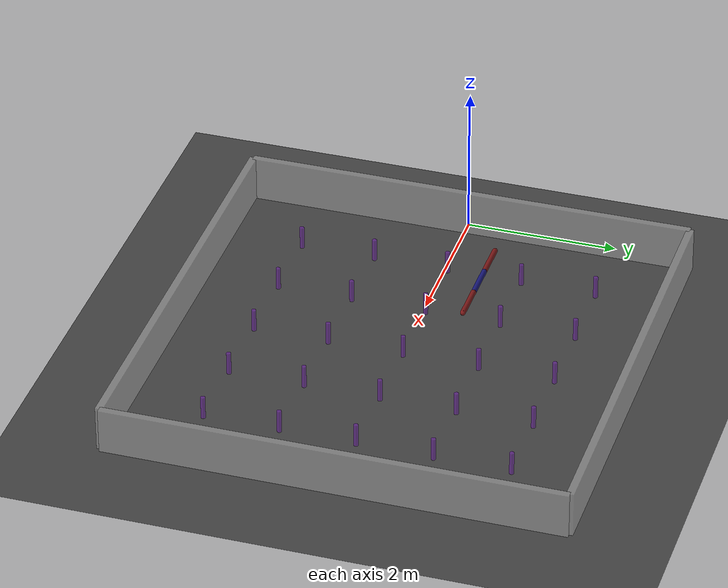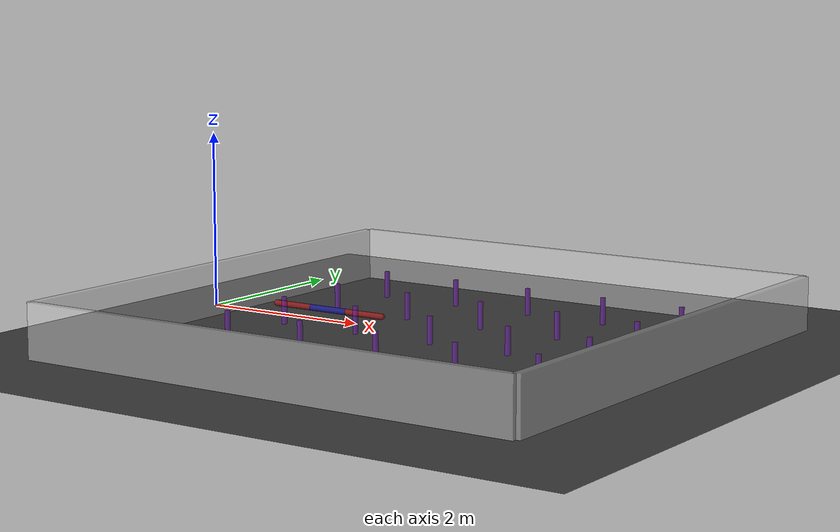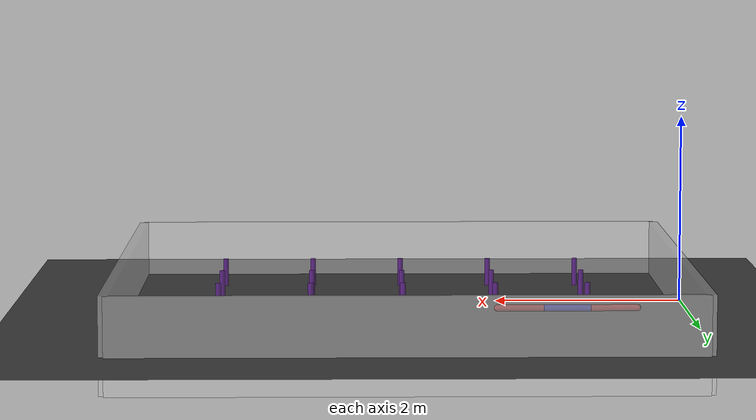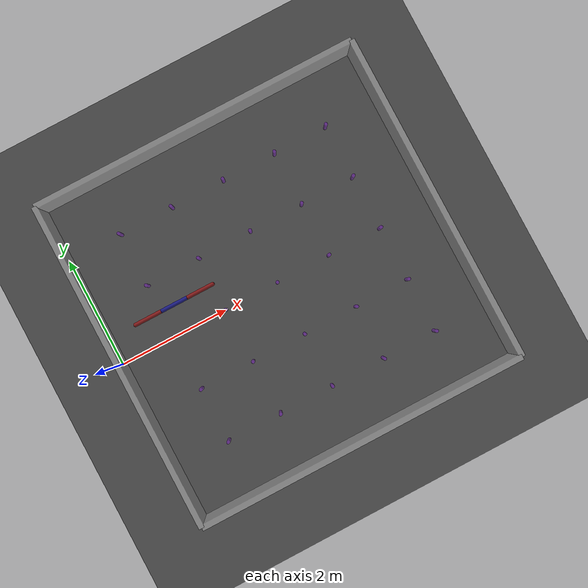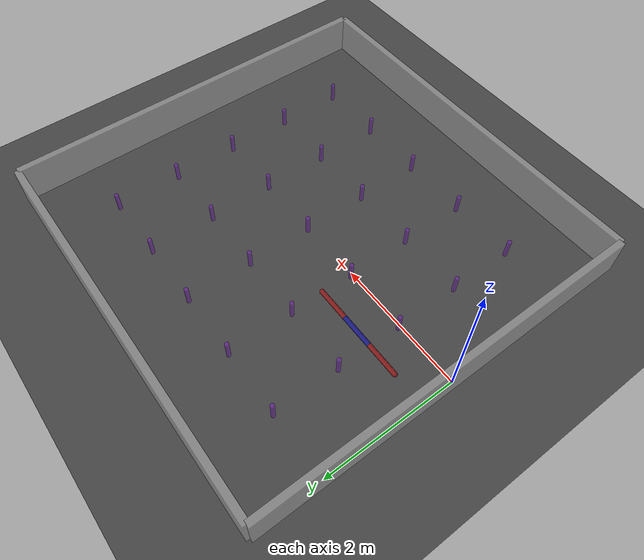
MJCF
<mujoco model="simplified-snake">

    <option timestep="0.005" iterations="50" solver="Newton" tolerance="1e-10"/>

    <!--size njmax="50" nconmax="10" nstack="200"/-->

    <visual>
        <rgba haze=".3 .3 .3 1"/>
    </visual>

    <default>
        <!--joint type="hinge" pos="0 0 0" axis="0 0 1" limited="true" range="0 120" damping="0.1"/-->
        <muscle ctrllimited="true" ctrlrange="-1 1"/>
    </default>

    <asset>
        <texture type="skybox" builtin="gradient" rgb1="0.6 0.6 0.6" rgb2="0 0 0" width="512" height="512"/>

        <texture name="texplane" type="2d" builtin="checker" rgb1=".25 .25 .25" rgb2=".3 .3 .3" width="512" height="512" mark="cross" markrgb=".8 .8 .8"/>

        <material name="matplane" reflectance="0.3" texture="texplane" texrepeat="1 1" texuniform="true"/>
    </asset>

    <option gravity="0 0 -9.8" />

    <worldbody>
        <light directional="true" diffuse=".8 .8 .8" specular=".2 .2 .2" pos="0 0 5" dir="0 0 -1"/>
        <geom name="floor" pos="0 0 -0.1" size="0 0 1" type="plane" material="matplane"/>
        <body name="snake" pos="0.5 0.5 0">
            <joint type="free"/>
            <geom name="body3" type="capsule" size="0.035" mass="3" fromto="0 0 0  0.5 0 0" rgba=".5 .1 .1 1"/>
            <body pos="0.5 0 0">
                <geom name="body2" type="capsule" size="0.035" mass="3" fromto="0 0 0  0.5 0 0" rgba=".1 .1 .5 1"/>
                <joint name="joint2" type="hinge" pos="0 0 0" limited="true" range="-45 45" damping="0.1"/>
                <body pos="0.5 0 0">
                    <geom name="body1" type="capsule" size="0.035" mass="3" fromto="0 0 0  0.5 0 0" rgba=".5 .1 .1 1"/>
                    <joint name="joint1" type="hinge" pos="0 0 0" limited="true" range="-45 45" damping="0.1"/>
                </body>
            </body>
        </body>

        <body pos="0 0 0">
            <geom name="wall1" type="box" pos="0 0 0" size=".05 3 0.5" rgba=".8 .8 .8 .5" mass="1" group="1"/>
            <geom name="wall2" type="box" pos="6 0 0" size=".05 3 0.5" rgba=".8 .8 .8 .5" mass="1" group="1"/>
            <geom name="wall3" type="box" pos="3 -3 0" size="3 0.05 0.5" rgba=".8 .8 .8 .5" mass="1" group="1"/>
            <geom name="wall4" type="box" pos="3 3 0" size="3 0.05 0.5" rgba=".8 .8 .8 .5" mass="1" group="1"/>

            <geom name="obstacle1.1" type="cylinder" pos="1 -2 0" size=".03 .2" rgba=".5 .1 .8 .5" mass="0" group="1"/>
            <geom name="obstacle1.2" type="cylinder" pos="1 -1 0" size=".03 .2" rgba=".5 .1 .8 .5" mass="0" group="1"/>
            <geom name="obstacle1.3" type="cylinder" pos="1 0 0" size=".03 .2" rgba=".5 .1 .8 .5" mass="0" group="1"/>
            <geom name="obstacle1.4" type="cylinder" pos="1 1 0" size=".03 .2" rgba=".5 .1 .8 .5" mass="0" group="1"/>
            <geom name="obstacle1.5" type="cylinder" pos="1 2 0" size=".03 .2" rgba=".5 .1 .8 .5" mass="0" group="1"/>
            <geom name="obstacle2.1" type="cylinder" pos="2 -2 0" size=".03 .2" rgba=".5 .1 .8 .5" mass="0" group="1"/>
            <geom name="obstacle2.2" type="cylinder" pos="2 -1 0" size=".03 .2" rgba=".5 .1 .8 .5" mass="0" group="1"/>
            <geom name="obstacle2.3" type="cylinder" pos="2 0 0" size=".03 .2" rgba=".5 .1 .8 .5" mass="0" group="1"/>
            <geom name="obstacle2.4" type="cylinder" pos="2 1 0" size=".03 .2" rgba=".5 .1 .8 .5" mass="0" group="1"/>
            <geom name="obstacle2.5" type="cylinder" pos="2 2 0" size=".03 .2" rgba=".5 .1 .8 .5" mass="0" group="1"/>
            <geom name="obstacle3.1" type="cylinder" pos="3 -2 0" size=".03 .2" rgba=".5 .1 .8 .5" mass="0" group="1"/>
            <geom name="obstacle3.2" type="cylinder" pos="3 -1 0" size=".03 .2" rgba=".5 .1 .8 .5" mass="0" group="1"/>
            <geom name="obstacle3.3" type="cylinder" pos="3 0 0" size=".03 .2" rgba=".5 .1 .8 .5" mass="0" group="1"/>
            <geom name="obstacle3.4" type="cylinder" pos="3 1 0" size=".03 .2" rgba=".5 .1 .8 .5" mass="0" group="1"/>
            <geom name="obstacle3.5" type="cylinder" pos="3 2 0" size=".03 .2" rgba=".5 .1 .8 .5" mass="0" group="1"/>
            <geom name="obstacle4.1" type="cylinder" pos="4 -2 0" size=".03 .2" rgba=".5 .1 .8 .5" mass="0" group="1"/>
            <geom name="obstacle4.2" type="cylinder" pos="4 -1 0" size=".03 .2" rgba=".5 .1 .8 .5" mass="0" group="1"/>
            <geom name="obstacle4.3" type="cylinder" pos="4 0 0" size=".03 .2" rgba=".5 .1 .8 .5" mass="0" group="1"/>
            <geom name="obstacle4.4" type="cylinder" pos="4 1 0" size=".03 .2" rgba=".5 .1 .8 .5" mass="0" group="1"/>
            <geom name="obstacle4.5" type="cylinder" pos="4 2 0" size=".03 .2" rgba=".5 .1 .8 .5" mass="0" group="1"/>
            <geom name="obstacle5.1" type="cylinder" pos="5 -2 0" size=".03 .2" rgba=".5 .1 .8 .5" mass="0" group="1"/>
            <geom name="obstacle5.2" type="cylinder" pos="5 -1 0" size=".03 .2" rgba=".5 .1 .8 .5" mass="0" group="1"/>
            <geom name="obstacle5.3" type="cylinder" pos="5 0 0" size=".03 .2" rgba=".5 .1 .8 .5" mass="0" group="1"/>
            <geom name="obstacle5.4" type="cylinder" pos="5 1 0" size=".03 .2" rgba=".5 .1 .8 .5" mass="0" group="1"/>
            <geom name="obstacle5.5" type="cylinder" pos="5 2 0" size=".03 .2" rgba=".5 .1 .8 .5" mass="0" group="1"/>
        </body>
    </worldbody>

     <actuator>
        <motor gear="2000.0" joint="joint1"/>
        <motor gear="2000.0" joint="joint2"/>
    </actuator>

    <contact>
        <pair geom1="floor" geom2="body3" condim="3" friction="0.1 1"/>
        <pair geom1="floor" geom2="body2" condim="3" friction="0.1 1"/>
        <pair geom1="floor" geom2="body1" condim="3" friction="0.1 1"/>
    </contact>

</mujoco>
